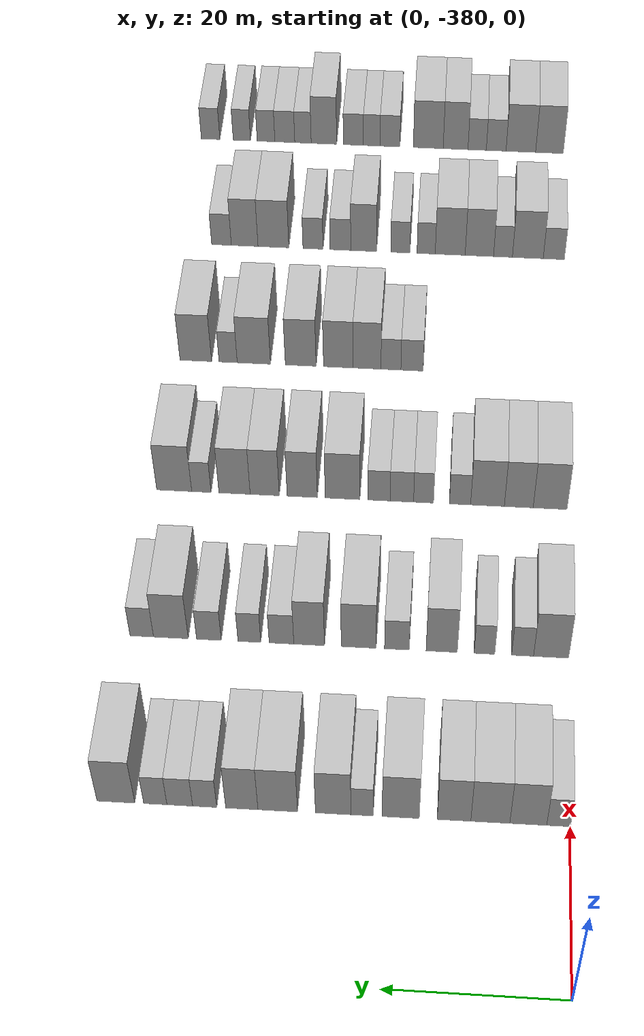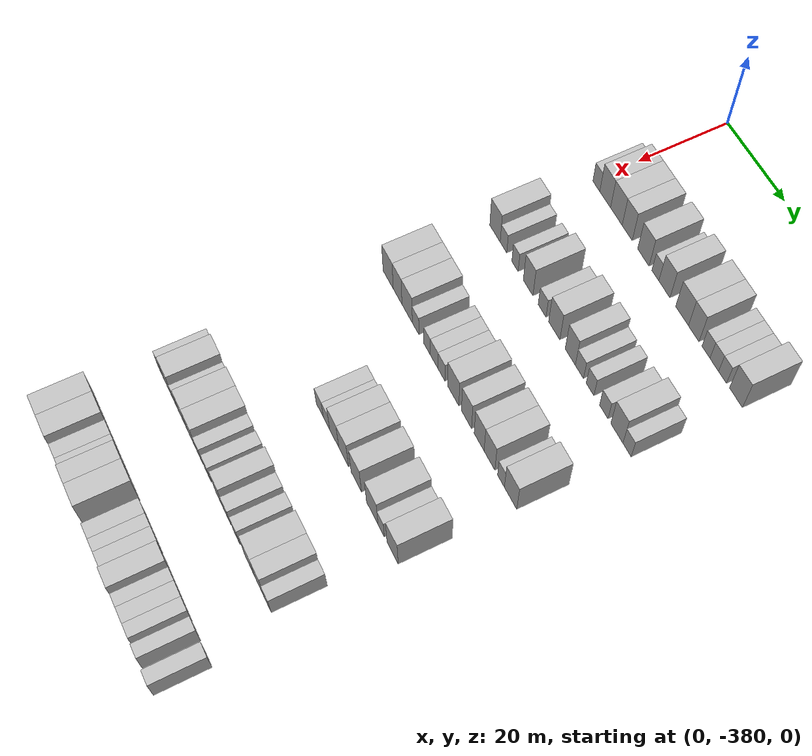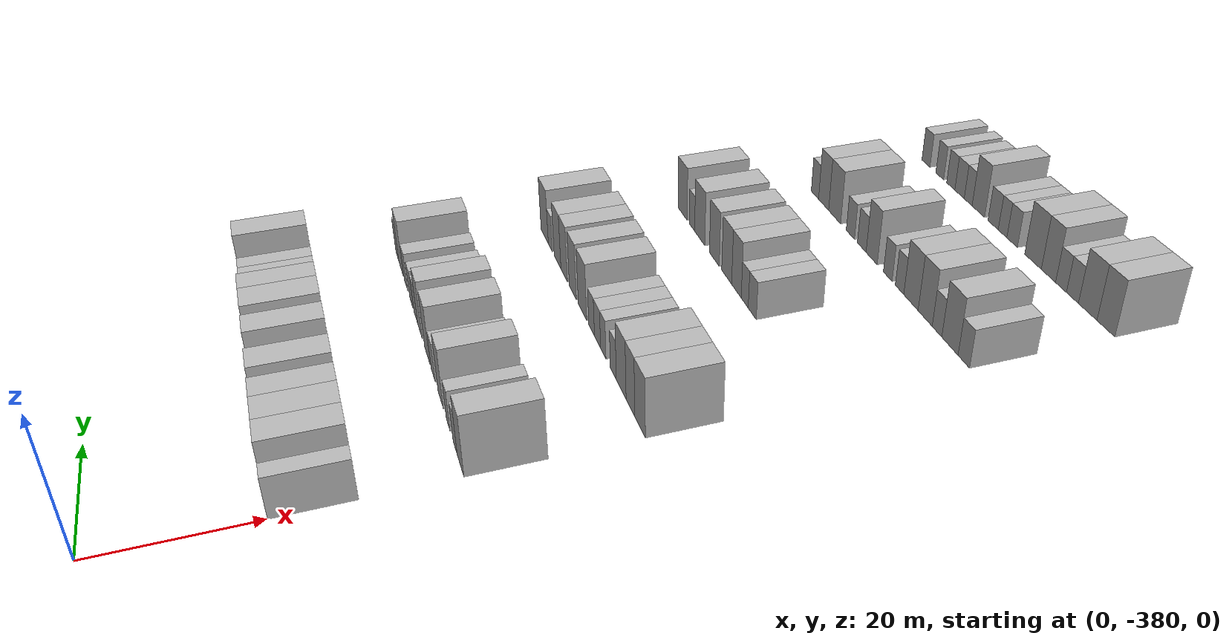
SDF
<sdf version="1.6">
 <world name="default">
  <model name="building_1">
   <static>1</static>
   <pose>25.0000 -378.6912 0 0.000000 0.000000 0.000000</pose>
   <link name="link">
    <pose>0 0 3.00 0 0 0</pose>
    <collision name="collision"><geometry><box><size>10.0000 2.6176 6.0000</size></box></geometry></collision>
    <visual name="visual">
     <cast_shadows>0</cast_shadows>
     <geometry><box><size>10.0000 2.6176 6.0000</size></box></geometry>
     <material>
      <script>
       <uri>model://HANNAS_wall/materials/scripts</uri>
       <uri>model://HANNAS_wall/materials/textures</uri>
       <name>vrc/HANNAS_wall</name>
      </script>
     </material>
    </visual>
   </link>
  </model>
  <model name="building_2">
   <static>1</static>
   <pose>25.0000 -375.3411 0 0.000000 0.000000 0.000000</pose>
   <link name="link">
    <pose>0 0 4.50 0 0 0</pose>
    <collision name="collision"><geometry><box><size>10.0000 4.0825 9.0000</size></box></geometry></collision>
    <visual name="visual">
     <cast_shadows>0</cast_shadows>
     <geometry><box><size>10.0000 4.0825 9.0000</size></box></geometry>
     <material>
      <script>
       <uri>model://HANNAS_wall/materials/scripts</uri>
       <uri>model://HANNAS_wall/materials/textures</uri>
       <name>vrc/HANNAS_wall</name>
      </script>
     </material>
    </visual>
   </link>
  </model>
  <model name="building_3">
   <static>1</static>
   <pose>25.0000 -371.1392 0 0.000000 0.000000 0.000000</pose>
   <link name="link">
    <pose>0 0 4.50 0 0 0</pose>
    <collision name="collision"><geometry><box><size>10.0000 4.3214 9.0000</size></box></geometry></collision>
    <visual name="visual">
     <cast_shadows>0</cast_shadows>
     <geometry><box><size>10.0000 4.3214 9.0000</size></box></geometry>
     <material>
      <script>
       <uri>model://HANNAS_wall/materials/scripts</uri>
       <uri>model://HANNAS_wall/materials/textures</uri>
       <name>vrc/HANNAS_wall</name>
      </script>
     </material>
    </visual>
   </link>
  </model>
  <model name="building_4">
   <static>1</static>
   <pose>25.0000 -367.1172 0 0.000000 0.000000 0.000000</pose>
   <link name="link">
    <pose>0 0 4.50 0 0 0</pose>
    <collision name="collision"><geometry><box><size>10.0000 3.7226 9.0000</size></box></geometry></collision>
    <visual name="visual">
     <cast_shadows>0</cast_shadows>
     <geometry><box><size>10.0000 3.7226 9.0000</size></box></geometry>
     <material>
      <script>
       <uri>model://HANNAS_wall/materials/scripts</uri>
       <uri>model://HANNAS_wall/materials/textures</uri>
       <name>vrc/HANNAS_wall</name>
      </script>
     </material>
    </visual>
   </link>
  </model>
  <model name="building_5">
   <static>1</static>
   <pose>25.0000 -361.1929 0 0.000000 0.000000 0.000000</pose>
   <link name="link">
    <pose>0 0 4.50 0 0 0</pose>
    <collision name="collision"><geometry><box><size>10.0000 4.1260 9.0000</size></box></geometry></collision>
    <visual name="visual">
     <cast_shadows>0</cast_shadows>
     <geometry><box><size>10.0000 4.1260 9.0000</size></box></geometry>
     <material>
      <script>
       <uri>model://HANNAS_wall/materials/scripts</uri>
       <uri>model://HANNAS_wall/materials/textures</uri>
       <name>vrc/HANNAS_wall</name>
      </script>
     </material>
    </visual>
   </link>
  </model>
  <model name="building_6">
   <static>1</static>
   <pose>25.0000 -356.8870 0 0.000000 0.000000 0.000000</pose>
   <link name="link">
    <pose>0 0 3.00 0 0 0</pose>
    <collision name="collision"><geometry><box><size>10.0000 2.4858 6.0000</size></box></geometry></collision>
    <visual name="visual">
     <cast_shadows>0</cast_shadows>
     <geometry><box><size>10.0000 2.4858 6.0000</size></box></geometry>
     <material>
      <script>
       <uri>model://HANNAS_wall/materials/scripts</uri>
       <uri>model://HANNAS_wall/materials/textures</uri>
       <name>vrc/HANNAS_wall</name>
      </script>
     </material>
    </visual>
   </link>
  </model>
  <model name="building_7">
   <static>1</static>
   <pose>25.0000 -353.6732 0 0.000000 0.000000 0.000000</pose>
   <link name="link">
    <pose>0 0 4.50 0 0 0</pose>
    <collision name="collision"><geometry><box><size>10.0000 3.9420 9.0000</size></box></geometry></collision>
    <visual name="visual">
     <cast_shadows>0</cast_shadows>
     <geometry><box><size>10.0000 3.9420 9.0000</size></box></geometry>
     <material>
      <script>
       <uri>model://HANNAS_wall/materials/scripts</uri>
       <uri>model://HANNAS_wall/materials/textures</uri>
       <name>vrc/HANNAS_wall</name>
      </script>
     </material>
    </visual>
   </link>
  </model>
  <model name="building_8">
   <static>1</static>
   <pose>25.0000 -347.4887 0 0.000000 0.000000 0.000000</pose>
   <link name="link">
    <pose>0 0 4.50 0 0 0</pose>
    <collision name="collision"><geometry><box><size>10.0000 4.4270 9.0000</size></box></geometry></collision>
    <visual name="visual">
     <cast_shadows>0</cast_shadows>
     <geometry><box><size>10.0000 4.4270 9.0000</size></box></geometry>
     <material>
      <script>
       <uri>model://HANNAS_wall/materials/scripts</uri>
       <uri>model://HANNAS_wall/materials/textures</uri>
       <name>vrc/HANNAS_wall</name>
      </script>
     </material>
    </visual>
   </link>
  </model>
  <model name="building_9">
   <static>1</static>
   <pose>25.0000 -343.4732 0 0.000000 0.000000 0.000000</pose>
   <link name="link">
    <pose>0 0 4.50 0 0 0</pose>
    <collision name="collision"><geometry><box><size>10.0000 3.6041 9.0000</size></box></geometry></collision>
    <visual name="visual">
     <cast_shadows>0</cast_shadows>
     <geometry><box><size>10.0000 3.6041 9.0000</size></box></geometry>
     <material>
      <script>
       <uri>model://HANNAS_wall/materials/scripts</uri>
       <uri>model://HANNAS_wall/materials/textures</uri>
       <name>vrc/HANNAS_wall</name>
      </script>
     </material>
    </visual>
   </link>
  </model>
  <model name="building_10">
   <static>1</static>
   <pose>25.0000 -339.3185 0 0.000000 0.000000 0.000000</pose>
   <link name="link">
    <pose>0 0 3.00 0 0 0</pose>
    <collision name="collision"><geometry><box><size>10.0000 2.7053 6.0000</size></box></geometry></collision>
    <visual name="visual">
     <cast_shadows>0</cast_shadows>
     <geometry><box><size>10.0000 2.7053 6.0000</size></box></geometry>
     <material>
      <script>
       <uri>model://HANNAS_wall/materials/scripts</uri>
       <uri>model://HANNAS_wall/materials/textures</uri>
       <name>vrc/HANNAS_wall</name>
      </script>
     </material>
    </visual>
   </link>
  </model>
  <model name="building_11">
   <static>1</static>
   <pose>25.0000 -336.5195 0 0.000000 0.000000 0.000000</pose>
   <link name="link">
    <pose>0 0 3.00 0 0 0</pose>
    <collision name="collision"><geometry><box><size>10.0000 2.8926 6.0000</size></box></geometry></collision>
    <visual name="visual">
     <cast_shadows>0</cast_shadows>
     <geometry><box><size>10.0000 2.8926 6.0000</size></box></geometry>
     <material>
      <script>
       <uri>model://HANNAS_wall/materials/scripts</uri>
       <uri>model://HANNAS_wall/materials/textures</uri>
       <name>vrc/HANNAS_wall</name>
      </script>
     </material>
    </visual>
   </link>
  </model>
  <model name="building_12">
   <static>1</static>
   <pose>25.0000 -333.7677 0 0.000000 0.000000 0.000000</pose>
   <link name="link">
    <pose>0 0 3.00 0 0 0</pose>
    <collision name="collision"><geometry><box><size>10.0000 2.6109 6.0000</size></box></geometry></collision>
    <visual name="visual">
     <cast_shadows>0</cast_shadows>
     <geometry><box><size>10.0000 2.6109 6.0000</size></box></geometry>
     <material>
      <script>
       <uri>model://HANNAS_wall/materials/scripts</uri>
       <uri>model://HANNAS_wall/materials/textures</uri>
       <name>vrc/HANNAS_wall</name>
      </script>
     </material>
    </visual>
   </link>
  </model>
  <model name="building_13">
   <static>1</static>
   <pose>25.0000 -329.3393 0 0.000000 0.000000 0.000000</pose>
   <link name="link">
    <pose>0 0 4.50 0 0 0</pose>
    <collision name="collision"><geometry><box><size>10.0000 4.2459 9.0000</size></box></geometry></collision>
    <visual name="visual">
     <cast_shadows>0</cast_shadows>
     <geometry><box><size>10.0000 4.2459 9.0000</size></box></geometry>
     <material>
      <script>
       <uri>model://HANNAS_wall/materials/scripts</uri>
       <uri>model://HANNAS_wall/materials/textures</uri>
       <name>vrc/HANNAS_wall</name>
      </script>
     </material>
    </visual>
   </link>
  </model>
  <model name="building_201">
   <static>1</static>
   <pose>47.0000 -377.9323 0 0.000000 0.000000 0.000000</pose>
   <link name="link">
    <pose>0 0 4.50 0 0 0</pose>
    <collision name="collision"><geometry><box><size>10.0000 4.1355 9.0000</size></box></geometry></collision>
    <visual name="visual">
     <cast_shadows>0</cast_shadows>
     <geometry><box><size>10.0000 4.1355 9.0000</size></box></geometry>
     <material>
      <script>
       <uri>model://HANNAS_wall/materials/scripts</uri>
       <uri>model://HANNAS_wall/materials/textures</uri>
       <name>vrc/HANNAS_wall</name>
      </script>
     </material>
    </visual>
   </link>
  </model>
  <model name="building_202">
   <static>1</static>
   <pose>47.0000 -374.5716 0 0.000000 0.000000 0.000000</pose>
   <link name="link">
    <pose>0 0 3.00 0 0 0</pose>
    <collision name="collision"><geometry><box><size>10.0000 2.5858 6.0000</size></box></geometry></collision>
    <visual name="visual">
     <cast_shadows>0</cast_shadows>
     <geometry><box><size>10.0000 2.5858 6.0000</size></box></geometry>
     <material>
      <script>
       <uri>model://HANNAS_wall/materials/scripts</uri>
       <uri>model://HANNAS_wall/materials/textures</uri>
       <name>vrc/HANNAS_wall</name>
      </script>
     </material>
    </visual>
   </link>
  </model>
  <model name="building_203">
   <static>1</static>
   <pose>47.0000 -370.0614 0 0.000000 0.000000 0.000000</pose>
   <link name="link">
    <pose>0 0 3.00 0 0 0</pose>
    <collision name="collision"><geometry><box><size>10.0000 2.4346 6.0000</size></box></geometry></collision>
    <visual name="visual">
     <cast_shadows>0</cast_shadows>
     <geometry><box><size>10.0000 2.4346 6.0000</size></box></geometry>
     <material>
      <script>
       <uri>model://HANNAS_wall/materials/scripts</uri>
       <uri>model://HANNAS_wall/materials/textures</uri>
       <name>vrc/HANNAS_wall</name>
      </script>
     </material>
    </visual>
   </link>
  </model>
  <model name="building_204">
   <static>1</static>
   <pose>47.0000 -364.9988 0 0.000000 0.000000 0.000000</pose>
   <link name="link">
    <pose>0 0 4.50 0 0 0</pose>
    <collision name="collision"><geometry><box><size>10.0000 3.6907 9.0000</size></box></geometry></collision>
    <visual name="visual">
     <cast_shadows>0</cast_shadows>
     <geometry><box><size>10.0000 3.6907 9.0000</size></box></geometry>
     <material>
      <script>
       <uri>model://HANNAS_wall/materials/scripts</uri>
       <uri>model://HANNAS_wall/materials/textures</uri>
       <name>vrc/HANNAS_wall</name>
      </script>
     </material>
    </visual>
   </link>
  </model>
  <model name="building_205">
   <static>1</static>
   <pose>47.0000 -359.6877 0 0.000000 0.000000 0.000000</pose>
   <link name="link">
    <pose>0 0 3.00 0 0 0</pose>
    <collision name="collision"><geometry><box><size>10.0000 2.9316 6.0000</size></box></geometry></collision>
    <visual name="visual">
     <cast_shadows>0</cast_shadows>
     <geometry><box><size>10.0000 2.9316 6.0000</size></box></geometry>
     <material>
      <script>
       <uri>model://HANNAS_wall/materials/scripts</uri>
       <uri>model://HANNAS_wall/materials/textures</uri>
       <name>vrc/HANNAS_wall</name>
      </script>
     </material>
    </visual>
   </link>
  </model>
  <model name="building_206">
   <static>1</static>
   <pose>47.0000 -355.1519 0 0.000000 0.000000 0.000000</pose>
   <link name="link">
    <pose>0 0 4.50 0 0 0</pose>
    <collision name="collision"><geometry><box><size>10.0000 4.1399 9.0000</size></box></geometry></collision>
    <visual name="visual">
     <cast_shadows>0</cast_shadows>
     <geometry><box><size>10.0000 4.1399 9.0000</size></box></geometry>
     <material>
      <script>
       <uri>model://HANNAS_wall/materials/scripts</uri>
       <uri>model://HANNAS_wall/materials/textures</uri>
       <name>vrc/HANNAS_wall</name>
      </script>
     </material>
    </visual>
   </link>
  </model>
  <model name="building_207">
   <static>1</static>
   <pose>47.0000 -349.2543 0 0.000000 0.000000 0.000000</pose>
   <link name="link">
    <pose>0 0 4.50 0 0 0</pose>
    <collision name="collision"><geometry><box><size>10.0000 3.6553 9.0000</size></box></geometry></collision>
    <visual name="visual">
     <cast_shadows>0</cast_shadows>
     <geometry><box><size>10.0000 3.6553 9.0000</size></box></geometry>
     <material>
      <script>
       <uri>model://HANNAS_wall/materials/scripts</uri>
       <uri>model://HANNAS_wall/materials/textures</uri>
       <name>vrc/HANNAS_wall</name>
      </script>
     </material>
    </visual>
   </link>
  </model>
  <model name="building_208">
   <static>1</static>
   <pose>47.0000 -345.9578 0 0.000000 0.000000 0.000000</pose>
   <link name="link">
    <pose>0 0 3.00 0 0 0</pose>
    <collision name="collision"><geometry><box><size>10.0000 2.9377 6.0000</size></box></geometry></collision>
    <visual name="visual">
     <cast_shadows>0</cast_shadows>
     <geometry><box><size>10.0000 2.9377 6.0000</size></box></geometry>
     <material>
      <script>
       <uri>model://HANNAS_wall/materials/scripts</uri>
       <uri>model://HANNAS_wall/materials/textures</uri>
       <name>vrc/HANNAS_wall</name>
      </script>
     </material>
    </visual>
   </link>
  </model>
  <model name="building_209">
   <static>1</static>
   <pose>47.0000 -342.1283 0 0.000000 0.000000 0.000000</pose>
   <link name="link">
    <pose>0 0 3.00 0 0 0</pose>
    <collision name="collision"><geometry><box><size>10.0000 2.7213 6.0000</size></box></geometry></collision>
    <visual name="visual">
     <cast_shadows>0</cast_shadows>
     <geometry><box><size>10.0000 2.7213 6.0000</size></box></geometry>
     <material>
      <script>
       <uri>model://HANNAS_wall/materials/scripts</uri>
       <uri>model://HANNAS_wall/materials/textures</uri>
       <name>vrc/HANNAS_wall</name>
      </script>
     </material>
    </visual>
   </link>
  </model>
  <model name="building_210">
   <static>1</static>
   <pose>47.0000 -337.2937 0 0.000000 0.000000 0.000000</pose>
   <link name="link">
    <pose>0 0 3.00 0 0 0</pose>
    <collision name="collision"><geometry><box><size>10.0000 2.9481 6.0000</size></box></geometry></collision>
    <visual name="visual">
     <cast_shadows>0</cast_shadows>
     <geometry><box><size>10.0000 2.9481 6.0000</size></box></geometry>
     <material>
      <script>
       <uri>model://HANNAS_wall/materials/scripts</uri>
       <uri>model://HANNAS_wall/materials/textures</uri>
       <name>vrc/HANNAS_wall</name>
      </script>
     </material>
    </visual>
   </link>
  </model>
  <model name="building_211">
   <static>1</static>
   <pose>47.0000 -332.7342 0 0.000000 0.000000 0.000000</pose>
   <link name="link">
    <pose>0 0 4.50 0 0 0</pose>
    <collision name="collision"><geometry><box><size>10.0000 4.1710 9.0000</size></box></geometry></collision>
    <visual name="visual">
     <cast_shadows>0</cast_shadows>
     <geometry><box><size>10.0000 4.1710 9.0000</size></box></geometry>
     <material>
      <script>
       <uri>model://HANNAS_wall/materials/scripts</uri>
       <uri>model://HANNAS_wall/materials/textures</uri>
       <name>vrc/HANNAS_wall</name>
      </script>
     </material>
    </visual>
   </link>
  </model>
  <model name="building_212">
   <static>1</static>
   <pose>47.0000 -329.2428 0 0.000000 0.000000 0.000000</pose>
   <link name="link">
    <pose>0 0 3.00 0 0 0</pose>
    <collision name="collision"><geometry><box><size>10.0000 2.8118 6.0000</size></box></geometry></collision>
    <visual name="visual">
     <cast_shadows>0</cast_shadows>
     <geometry><box><size>10.0000 2.8118 6.0000</size></box></geometry>
     <material>
      <script>
       <uri>model://HANNAS_wall/materials/scripts</uri>
       <uri>model://HANNAS_wall/materials/textures</uri>
       <name>vrc/HANNAS_wall</name>
      </script>
     </material>
    </visual>
   </link>
  </model>
  <model name="building_395">
   <static>1</static>
   <pose>69.0000 -377.8773 0 0.000000 0.000000 0.000000</pose>
   <link name="link">
    <pose>0 0 4.50 0 0 0</pose>
    <collision name="collision"><geometry><box><size>10.0000 4.2454 9.0000</size></box></geometry></collision>
    <visual name="visual">
     <cast_shadows>0</cast_shadows>
     <geometry><box><size>10.0000 4.2454 9.0000</size></box></geometry>
     <material>
      <script>
       <uri>model://HANNAS_wall/materials/scripts</uri>
       <uri>model://HANNAS_wall/materials/textures</uri>
       <name>vrc/HANNAS_wall</name>
      </script>
     </material>
    </visual>
   </link>
  </model>
  <model name="building_396">
   <static>1</static>
   <pose>69.0000 -373.9431 0 0.000000 0.000000 0.000000</pose>
   <link name="link">
    <pose>0 0 4.50 0 0 0</pose>
    <collision name="collision"><geometry><box><size>10.0000 3.6231 9.0000</size></box></geometry></collision>
    <visual name="visual">
     <cast_shadows>0</cast_shadows>
     <geometry><box><size>10.0000 3.6231 9.0000</size></box></geometry>
     <material>
      <script>
       <uri>model://HANNAS_wall/materials/scripts</uri>
       <uri>model://HANNAS_wall/materials/textures</uri>
       <name>vrc/HANNAS_wall</name>
      </script>
     </material>
    </visual>
   </link>
  </model>
  <model name="building_397">
   <static>1</static>
   <pose>69.0000 -370.0113 0 0.000000 0.000000 0.000000</pose>
   <link name="link">
    <pose>0 0 4.50 0 0 0</pose>
    <collision name="collision"><geometry><box><size>10.0000 4.2406 9.0000</size></box></geometry></collision>
    <visual name="visual">
     <cast_shadows>0</cast_shadows>
     <geometry><box><size>10.0000 4.2406 9.0000</size></box></geometry>
     <material>
      <script>
       <uri>model://HANNAS_wall/materials/scripts</uri>
       <uri>model://HANNAS_wall/materials/textures</uri>
       <name>vrc/HANNAS_wall</name>
      </script>
     </material>
    </visual>
   </link>
  </model>
  <model name="building_398">
   <static>1</static>
   <pose>69.0000 -366.5575 0 0.000000 0.000000 0.000000</pose>
   <link name="link">
    <pose>0 0 3.00 0 0 0</pose>
    <collision name="collision"><geometry><box><size>10.0000 2.6670 6.0000</size></box></geometry></collision>
    <visual name="visual">
     <cast_shadows>0</cast_shadows>
     <geometry><box><size>10.0000 2.6670 6.0000</size></box></geometry>
     <material>
      <script>
       <uri>model://HANNAS_wall/materials/scripts</uri>
       <uri>model://HANNAS_wall/materials/textures</uri>
       <name>vrc/HANNAS_wall</name>
      </script>
     </material>
    </visual>
   </link>
  </model>
  <model name="building_399">
   <static>1</static>
   <pose>69.0000 -361.9664 0 0.000000 0.000000 0.000000</pose>
   <link name="link">
    <pose>0 0 3.00 0 0 0</pose>
    <collision name="collision"><geometry><box><size>10.0000 2.5152 6.0000</size></box></geometry></collision>
    <visual name="visual">
     <cast_shadows>0</cast_shadows>
     <geometry><box><size>10.0000 2.5152 6.0000</size></box></geometry>
     <material>
      <script>
       <uri>model://HANNAS_wall/materials/scripts</uri>
       <uri>model://HANNAS_wall/materials/textures</uri>
       <name>vrc/HANNAS_wall</name>
      </script>
     </material>
    </visual>
   </link>
  </model>
  <model name="building_400">
   <static>1</static>
   <pose>69.0000 -359.2300 0 0.000000 0.000000 0.000000</pose>
   <link name="link">
    <pose>0 0 3.00 0 0 0</pose>
    <collision name="collision"><geometry><box><size>10.0000 2.9575 6.0000</size></box></geometry></collision>
    <visual name="visual">
     <cast_shadows>0</cast_shadows>
     <geometry><box><size>10.0000 2.9575 6.0000</size></box></geometry>
     <material>
      <script>
       <uri>model://HANNAS_wall/materials/scripts</uri>
       <uri>model://HANNAS_wall/materials/textures</uri>
       <name>vrc/HANNAS_wall</name>
      </script>
     </material>
    </visual>
   </link>
  </model>
  <model name="building_401">
   <static>1</static>
   <pose>69.0000 -356.3385 0 0.000000 0.000000 0.000000</pose>
   <link name="link">
    <pose>0 0 3.00 0 0 0</pose>
    <collision name="collision"><geometry><box><size>10.0000 2.8256 6.0000</size></box></geometry></collision>
    <visual name="visual">
     <cast_shadows>0</cast_shadows>
     <geometry><box><size>10.0000 2.8256 6.0000</size></box></geometry>
     <material>
      <script>
       <uri>model://HANNAS_wall/materials/scripts</uri>
       <uri>model://HANNAS_wall/materials/textures</uri>
       <name>vrc/HANNAS_wall</name>
      </script>
     </material>
    </visual>
   </link>
  </model>
  <model name="building_402">
   <static>1</static>
   <pose>69.0000 -351.7409 0 0.000000 0.000000 0.000000</pose>
   <link name="link">
    <pose>0 0 4.50 0 0 0</pose>
    <collision name="collision"><geometry><box><size>10.0000 4.3696 9.0000</size></box></geometry></collision>
    <visual name="visual">
     <cast_shadows>0</cast_shadows>
     <geometry><box><size>10.0000 4.3696 9.0000</size></box></geometry>
     <material>
      <script>
       <uri>model://HANNAS_wall/materials/scripts</uri>
       <uri>model://HANNAS_wall/materials/textures</uri>
       <name>vrc/HANNAS_wall</name>
      </script>
     </material>
    </visual>
   </link>
  </model>
  <model name="building_403">
   <static>1</static>
   <pose>69.0000 -346.6430 0 0.000000 0.000000 0.000000</pose>
   <link name="link">
    <pose>0 0 4.50 0 0 0</pose>
    <collision name="collision"><geometry><box><size>10.0000 3.8262 9.0000</size></box></geometry></collision>
    <visual name="visual">
     <cast_shadows>0</cast_shadows>
     <geometry><box><size>10.0000 3.8262 9.0000</size></box></geometry>
     <material>
      <script>
       <uri>model://HANNAS_wall/materials/scripts</uri>
       <uri>model://HANNAS_wall/materials/textures</uri>
       <name>vrc/HANNAS_wall</name>
      </script>
     </material>
    </visual>
   </link>
  </model>
  <model name="building_404">
   <static>1</static>
   <pose>69.0000 -341.8815 0 0.000000 0.000000 0.000000</pose>
   <link name="link">
    <pose>0 0 4.50 0 0 0</pose>
    <collision name="collision"><geometry><box><size>10.0000 3.6968 9.0000</size></box></geometry></collision>
    <visual name="visual">
     <cast_shadows>0</cast_shadows>
     <geometry><box><size>10.0000 3.6968 9.0000</size></box></geometry>
     <material>
      <script>
       <uri>model://HANNAS_wall/materials/scripts</uri>
       <uri>model://HANNAS_wall/materials/textures</uri>
       <name>vrc/HANNAS_wall</name>
      </script>
     </material>
    </visual>
   </link>
  </model>
  <model name="building_405">
   <static>1</static>
   <pose>69.0000 -338.0503 0 0.000000 0.000000 0.000000</pose>
   <link name="link">
    <pose>0 0 4.50 0 0 0</pose>
    <collision name="collision"><geometry><box><size>10.0000 3.9655 9.0000</size></box></geometry></collision>
    <visual name="visual">
     <cast_shadows>0</cast_shadows>
     <geometry><box><size>10.0000 3.9655 9.0000</size></box></geometry>
     <material>
      <script>
       <uri>model://HANNAS_wall/materials/scripts</uri>
       <uri>model://HANNAS_wall/materials/textures</uri>
       <name>vrc/HANNAS_wall</name>
      </script>
     </material>
    </visual>
   </link>
  </model>
  <model name="building_406">
   <static>1</static>
   <pose>69.0000 -333.8349 0 0.000000 0.000000 0.000000</pose>
   <link name="link">
    <pose>0 0 3.00 0 0 0</pose>
    <collision name="collision"><geometry><box><size>10.0000 2.4653 6.0000</size></box></geometry></collision>
    <visual name="visual">
     <cast_shadows>0</cast_shadows>
     <geometry><box><size>10.0000 2.4653 6.0000</size></box></geometry>
     <material>
      <script>
       <uri>model://HANNAS_wall/materials/scripts</uri>
       <uri>model://HANNAS_wall/materials/textures</uri>
       <name>vrc/HANNAS_wall</name>
      </script>
     </material>
    </visual>
   </link>
  </model>
  <model name="building_407">
   <static>1</static>
   <pose>69.0000 -330.3759 0 0.000000 0.000000 0.000000</pose>
   <link name="link">
    <pose>0 0 4.50 0 0 0</pose>
    <collision name="collision"><geometry><box><size>10.0000 4.4525 9.0000</size></box></geometry></collision>
    <visual name="visual">
     <cast_shadows>0</cast_shadows>
     <geometry><box><size>10.0000 4.4525 9.0000</size></box></geometry>
     <material>
      <script>
       <uri>model://HANNAS_wall/materials/scripts</uri>
       <uri>model://HANNAS_wall/materials/textures</uri>
       <name>vrc/HANNAS_wall</name>
      </script>
     </material>
    </visual>
   </link>
  </model>
  <model name="building_579">
   <static>1</static>
   <pose>91.0000 -359.5421 0 0.000000 0.000000 0.000000</pose>
   <link name="link">
    <pose>0 0 3.00 0 0 0</pose>
    <collision name="collision"><geometry><box><size>10.0000 2.9719 6.0000</size></box></geometry></collision>
    <visual name="visual">
     <cast_shadows>0</cast_shadows>
     <geometry><box><size>10.0000 2.9719 6.0000</size></box></geometry>
     <material>
      <script>
       <uri>model://HANNAS_wall/materials/scripts</uri>
       <uri>model://HANNAS_wall/materials/textures</uri>
       <name>vrc/HANNAS_wall</name>
      </script>
     </material>
    </visual>
   </link>
  </model>
  <model name="building_580">
   <static>1</static>
   <pose>91.0000 -356.7259 0 0.000000 0.000000 0.000000</pose>
   <link name="link">
    <pose>0 0 3.00 0 0 0</pose>
    <collision name="collision"><geometry><box><size>10.0000 2.6604 6.0000</size></box></geometry></collision>
    <visual name="visual">
     <cast_shadows>0</cast_shadows>
     <geometry><box><size>10.0000 2.6604 6.0000</size></box></geometry>
     <material>
      <script>
       <uri>model://HANNAS_wall/materials/scripts</uri>
       <uri>model://HANNAS_wall/materials/textures</uri>
       <name>vrc/HANNAS_wall</name>
      </script>
     </material>
    </visual>
   </link>
  </model>
  <model name="building_581">
   <static>1</static>
   <pose>91.0000 -353.5367 0 0.000000 0.000000 0.000000</pose>
   <link name="link">
    <pose>0 0 4.50 0 0 0</pose>
    <collision name="collision"><geometry><box><size>10.0000 3.7181 9.0000</size></box></geometry></collision>
    <visual name="visual">
     <cast_shadows>0</cast_shadows>
     <geometry><box><size>10.0000 3.7181 9.0000</size></box></geometry>
     <material>
      <script>
       <uri>model://HANNAS_wall/materials/scripts</uri>
       <uri>model://HANNAS_wall/materials/textures</uri>
       <name>vrc/HANNAS_wall</name>
      </script>
     </material>
    </visual>
   </link>
  </model>
  <model name="building_582">
   <static>1</static>
   <pose>91.0000 -349.6933 0 0.000000 0.000000 0.000000</pose>
   <link name="link">
    <pose>0 0 4.50 0 0 0</pose>
    <collision name="collision"><geometry><box><size>10.0000 3.9687 9.0000</size></box></geometry></collision>
    <visual name="visual">
     <cast_shadows>0</cast_shadows>
     <geometry><box><size>10.0000 3.9687 9.0000</size></box></geometry>
     <material>
      <script>
       <uri>model://HANNAS_wall/materials/scripts</uri>
       <uri>model://HANNAS_wall/materials/textures</uri>
       <name>vrc/HANNAS_wall</name>
      </script>
     </material>
    </visual>
   </link>
  </model>
  <model name="building_583">
   <static>1</static>
   <pose>91.0000 -344.6454 0 0.000000 0.000000 0.000000</pose>
   <link name="link">
    <pose>0 0 4.50 0 0 0</pose>
    <collision name="collision"><geometry><box><size>10.0000 4.1271 9.0000</size></box></geometry></collision>
    <visual name="visual">
     <cast_shadows>0</cast_shadows>
     <geometry><box><size>10.0000 4.1271 9.0000</size></box></geometry>
     <material>
      <script>
       <uri>model://HANNAS_wall/materials/scripts</uri>
       <uri>model://HANNAS_wall/materials/textures</uri>
       <name>vrc/HANNAS_wall</name>
      </script>
     </material>
    </visual>
   </link>
  </model>
  <model name="building_584">
   <static>1</static>
   <pose>91.0000 -338.3453 0 0.000000 0.000000 0.000000</pose>
   <link name="link">
    <pose>0 0 4.50 0 0 0</pose>
    <collision name="collision"><geometry><box><size>10.0000 4.4730 9.0000</size></box></geometry></collision>
    <visual name="visual">
     <cast_shadows>0</cast_shadows>
     <geometry><box><size>10.0000 4.4730 9.0000</size></box></geometry>
     <material>
      <script>
       <uri>model://HANNAS_wall/materials/scripts</uri>
       <uri>model://HANNAS_wall/materials/textures</uri>
       <name>vrc/HANNAS_wall</name>
      </script>
     </material>
    </visual>
   </link>
  </model>
  <model name="building_585">
   <static>1</static>
   <pose>91.0000 -334.8874 0 0.000000 0.000000 0.000000</pose>
   <link name="link">
    <pose>0 0 3.00 0 0 0</pose>
    <collision name="collision"><geometry><box><size>10.0000 2.4429 6.0000</size></box></geometry></collision>
    <visual name="visual">
     <cast_shadows>0</cast_shadows>
     <geometry><box><size>10.0000 2.4429 6.0000</size></box></geometry>
     <material>
      <script>
       <uri>model://HANNAS_wall/materials/scripts</uri>
       <uri>model://HANNAS_wall/materials/textures</uri>
       <name>vrc/HANNAS_wall</name>
      </script>
     </material>
    </visual>
   </link>
  </model>
  <model name="building_586">
   <static>1</static>
   <pose>91.0000 -330.5361 0 0.000000 0.000000 0.000000</pose>
   <link name="link">
    <pose>0 0 4.50 0 0 0</pose>
    <collision name="collision"><geometry><box><size>10.0000 4.2597 9.0000</size></box></geometry></collision>
    <visual name="visual">
     <cast_shadows>0</cast_shadows>
     <geometry><box><size>10.0000 4.2597 9.0000</size></box></geometry>
     <material>
      <script>
       <uri>model://HANNAS_wall/materials/scripts</uri>
       <uri>model://HANNAS_wall/materials/textures</uri>
       <name>vrc/HANNAS_wall</name>
      </script>
     </material>
    </visual>
   </link>
  </model>
  <model name="building_765">
   <static>1</static>
   <pose>113.0000 -378.5195 0 0.000000 0.000000 0.000000</pose>
   <link name="link">
    <pose>0 0 3.00 0 0 0</pose>
    <collision name="collision"><geometry><box><size>10.0000 2.9609 6.0000</size></box></geometry></collision>
    <visual name="visual">
     <cast_shadows>0</cast_shadows>
     <geometry><box><size>10.0000 2.9609 6.0000</size></box></geometry>
     <material>
      <script>
       <uri>model://HANNAS_wall/materials/scripts</uri>
       <uri>model://HANNAS_wall/materials/textures</uri>
       <name>vrc/HANNAS_wall</name>
      </script>
     </material>
    </visual>
   </link>
  </model>
  <model name="building_766">
   <static>1</static>
   <pose>113.0000 -374.8732 0 0.000000 0.000000 0.000000</pose>
   <link name="link">
    <pose>0 0 4.50 0 0 0</pose>
    <collision name="collision"><geometry><box><size>10.0000 4.3317 9.0000</size></box></geometry></collision>
    <visual name="visual">
     <cast_shadows>0</cast_shadows>
     <geometry><box><size>10.0000 4.3317 9.0000</size></box></geometry>
     <material>
      <script>
       <uri>model://HANNAS_wall/materials/scripts</uri>
       <uri>model://HANNAS_wall/materials/textures</uri>
       <name>vrc/HANNAS_wall</name>
      </script>
     </material>
    </visual>
   </link>
  </model>
  <model name="building_767">
   <static>1</static>
   <pose>113.0000 -371.3824 0 0.000000 0.000000 0.000000</pose>
   <link name="link">
    <pose>0 0 3.00 0 0 0</pose>
    <collision name="collision"><geometry><box><size>10.0000 2.6499 6.0000</size></box></geometry></collision>
    <visual name="visual">
     <cast_shadows>0</cast_shadows>
     <geometry><box><size>10.0000 2.6499 6.0000</size></box></geometry>
     <material>
      <script>
       <uri>model://HANNAS_wall/materials/scripts</uri>
       <uri>model://HANNAS_wall/materials/textures</uri>
       <name>vrc/HANNAS_wall</name>
      </script>
     </material>
    </visual>
   </link>
  </model>
  <model name="building_768">
   <static>1</static>
   <pose>113.0000 -368.0605 0 0.000000 0.000000 0.000000</pose>
   <link name="link">
    <pose>0 0 4.50 0 0 0</pose>
    <collision name="collision"><geometry><box><size>10.0000 3.9939 9.0000</size></box></geometry></collision>
    <visual name="visual">
     <cast_shadows>0</cast_shadows>
     <geometry><box><size>10.0000 3.9939 9.0000</size></box></geometry>
     <material>
      <script>
       <uri>model://HANNAS_wall/materials/scripts</uri>
       <uri>model://HANNAS_wall/materials/textures</uri>
       <name>vrc/HANNAS_wall</name>
      </script>
     </material>
    </visual>
   </link>
  </model>
  <model name="building_769">
   <static>1</static>
   <pose>113.0000 -363.9544 0 0.000000 0.000000 0.000000</pose>
   <link name="link">
    <pose>0 0 4.50 0 0 0</pose>
    <collision name="collision"><geometry><box><size>10.0000 4.2185 9.0000</size></box></geometry></collision>
    <visual name="visual">
     <cast_shadows>0</cast_shadows>
     <geometry><box><size>10.0000 4.2185 9.0000</size></box></geometry>
     <material>
      <script>
       <uri>model://HANNAS_wall/materials/scripts</uri>
       <uri>model://HANNAS_wall/materials/textures</uri>
       <name>vrc/HANNAS_wall</name>
      </script>
     </material>
    </visual>
   </link>
  </model>
  <model name="building_770">
   <static>1</static>
   <pose>113.0000 -360.5644 0 0.000000 0.000000 0.000000</pose>
   <link name="link">
    <pose>0 0 3.00 0 0 0</pose>
    <collision name="collision"><geometry><box><size>10.0000 2.5614 6.0000</size></box></geometry></collision>
    <visual name="visual">
     <cast_shadows>0</cast_shadows>
     <geometry><box><size>10.0000 2.5614 6.0000</size></box></geometry>
     <material>
      <script>
       <uri>model://HANNAS_wall/materials/scripts</uri>
       <uri>model://HANNAS_wall/materials/textures</uri>
       <name>vrc/HANNAS_wall</name>
      </script>
     </material>
    </visual>
   </link>
  </model>
  <model name="building_771">
   <static>1</static>
   <pose>113.0000 -356.9276 0 0.000000 0.000000 0.000000</pose>
   <link name="link">
    <pose>0 0 3.00 0 0 0</pose>
    <collision name="collision"><geometry><box><size>10.0000 2.7124 6.0000</size></box></geometry></collision>
    <visual name="visual">
     <cast_shadows>0</cast_shadows>
     <geometry><box><size>10.0000 2.7124 6.0000</size></box></geometry>
     <material>
      <script>
       <uri>model://HANNAS_wall/materials/scripts</uri>
       <uri>model://HANNAS_wall/materials/textures</uri>
       <name>vrc/HANNAS_wall</name>
      </script>
     </material>
    </visual>
   </link>
  </model>
  <model name="building_772">
   <static>1</static>
   <pose>113.0000 -351.7476 0 0.000000 0.000000 0.000000</pose>
   <link name="link">
    <pose>0 0 4.50 0 0 0</pose>
    <collision name="collision"><geometry><box><size>10.0000 3.6475 9.0000</size></box></geometry></collision>
    <visual name="visual">
     <cast_shadows>0</cast_shadows>
     <geometry><box><size>10.0000 3.6475 9.0000</size></box></geometry>
     <material>
      <script>
       <uri>model://HANNAS_wall/materials/scripts</uri>
       <uri>model://HANNAS_wall/materials/textures</uri>
       <name>vrc/HANNAS_wall</name>
      </script>
     </material>
    </visual>
   </link>
  </model>
  <model name="building_773">
   <static>1</static>
   <pose>113.0000 -348.4621 0 0.000000 0.000000 0.000000</pose>
   <link name="link">
    <pose>0 0 3.00 0 0 0</pose>
    <collision name="collision"><geometry><box><size>10.0000 2.9236 6.0000</size></box></geometry></collision>
    <visual name="visual">
     <cast_shadows>0</cast_shadows>
     <geometry><box><size>10.0000 2.9236 6.0000</size></box></geometry>
     <material>
      <script>
       <uri>model://HANNAS_wall/materials/scripts</uri>
       <uri>model://HANNAS_wall/materials/textures</uri>
       <name>vrc/HANNAS_wall</name>
      </script>
     </material>
    </visual>
   </link>
  </model>
  <model name="building_774">
   <static>1</static>
   <pose>113.0000 -344.5789 0 0.000000 0.000000 0.000000</pose>
   <link name="link">
    <pose>0 0 3.00 0 0 0</pose>
    <collision name="collision"><geometry><box><size>10.0000 2.8428 6.0000</size></box></geometry></collision>
    <visual name="visual">
     <cast_shadows>0</cast_shadows>
     <geometry><box><size>10.0000 2.8428 6.0000</size></box></geometry>
     <material>
      <script>
       <uri>model://HANNAS_wall/materials/scripts</uri>
       <uri>model://HANNAS_wall/materials/textures</uri>
       <name>vrc/HANNAS_wall</name>
      </script>
     </material>
    </visual>
   </link>
  </model>
  <model name="building_775">
   <static>1</static>
   <pose>113.0000 -338.9667 0 0.000000 0.000000 0.000000</pose>
   <link name="link">
    <pose>0 0 4.50 0 0 0</pose>
    <collision name="collision"><geometry><box><size>10.0000 4.3816 9.0000</size></box></geometry></collision>
    <visual name="visual">
     <cast_shadows>0</cast_shadows>
     <geometry><box><size>10.0000 4.3816 9.0000</size></box></geometry>
     <material>
      <script>
       <uri>model://HANNAS_wall/materials/scripts</uri>
       <uri>model://HANNAS_wall/materials/textures</uri>
       <name>vrc/HANNAS_wall</name>
      </script>
     </material>
    </visual>
   </link>
  </model>
  <model name="building_776">
   <static>1</static>
   <pose>113.0000 -334.8824 0 0.000000 0.000000 0.000000</pose>
   <link name="link">
    <pose>0 0 4.50 0 0 0</pose>
    <collision name="collision"><geometry><box><size>10.0000 3.7871 9.0000</size></box></geometry></collision>
    <visual name="visual">
     <cast_shadows>0</cast_shadows>
     <geometry><box><size>10.0000 3.7871 9.0000</size></box></geometry>
     <material>
      <script>
       <uri>model://HANNAS_wall/materials/scripts</uri>
       <uri>model://HANNAS_wall/materials/textures</uri>
       <name>vrc/HANNAS_wall</name>
      </script>
     </material>
    </visual>
   </link>
  </model>
  <model name="building_777">
   <static>1</static>
   <pose>113.0000 -331.5951 0 0.000000 0.000000 0.000000</pose>
   <link name="link">
    <pose>0 0 3.00 0 0 0</pose>
    <collision name="collision"><geometry><box><size>10.0000 2.7875 6.0000</size></box></geometry></collision>
    <visual name="visual">
     <cast_shadows>0</cast_shadows>
     <geometry><box><size>10.0000 2.7875 6.0000</size></box></geometry>
     <material>
      <script>
       <uri>model://HANNAS_wall/materials/scripts</uri>
       <uri>model://HANNAS_wall/materials/textures</uri>
       <name>vrc/HANNAS_wall</name>
      </script>
     </material>
    </visual>
   </link>
  </model>
  <model name="building_938">
   <static>1</static>
   <pose>135.0000 -377.9589 0 0.000000 0.000000 0.000000</pose>
   <link name="link">
    <pose>0 0 4.50 0 0 0</pose>
    <collision name="collision"><geometry><box><size>10.0000 4.0821 9.0000</size></box></geometry></collision>
    <visual name="visual">
     <cast_shadows>0</cast_shadows>
     <geometry><box><size>10.0000 4.0821 9.0000</size></box></geometry>
     <material>
      <script>
       <uri>model://HANNAS_wall/materials/scripts</uri>
       <uri>model://HANNAS_wall/materials/textures</uri>
       <name>vrc/HANNAS_wall</name>
      </script>
     </material>
    </visual>
   </link>
  </model>
  <model name="building_939">
   <static>1</static>
   <pose>135.0000 -373.7299 0 0.000000 0.000000 0.000000</pose>
   <link name="link">
    <pose>0 0 4.50 0 0 0</pose>
    <collision name="collision"><geometry><box><size>10.0000 4.3759 9.0000</size></box></geometry></collision>
    <visual name="visual">
     <cast_shadows>0</cast_shadows>
     <geometry><box><size>10.0000 4.3759 9.0000</size></box></geometry>
     <material>
      <script>
       <uri>model://HANNAS_wall/materials/scripts</uri>
       <uri>model://HANNAS_wall/materials/textures</uri>
       <name>vrc/HANNAS_wall</name>
      </script>
     </material>
    </visual>
   </link>
  </model>
  <model name="building_940">
   <static>1</static>
   <pose>135.0000 -370.0826 0 0.000000 0.000000 0.000000</pose>
   <link name="link">
    <pose>0 0 3.00 0 0 0</pose>
    <collision name="collision"><geometry><box><size>10.0000 2.9188 6.0000</size></box></geometry></collision>
    <visual name="visual">
     <cast_shadows>0</cast_shadows>
     <geometry><box><size>10.0000 2.9188 6.0000</size></box></geometry>
     <material>
      <script>
       <uri>model://HANNAS_wall/materials/scripts</uri>
       <uri>model://HANNAS_wall/materials/textures</uri>
       <name>vrc/HANNAS_wall</name>
      </script>
     </material>
    </visual>
   </link>
  </model>
  <model name="building_941">
   <static>1</static>
   <pose>135.0000 -367.2650 0 0.000000 0.000000 0.000000</pose>
   <link name="link">
    <pose>0 0 3.00 0 0 0</pose>
    <collision name="collision"><geometry><box><size>10.0000 2.7165 6.0000</size></box></geometry></collision>
    <visual name="visual">
     <cast_shadows>0</cast_shadows>
     <geometry><box><size>10.0000 2.7165 6.0000</size></box></geometry>
     <material>
      <script>
       <uri>model://HANNAS_wall/materials/scripts</uri>
       <uri>model://HANNAS_wall/materials/textures</uri>
       <name>vrc/HANNAS_wall</name>
      </script>
     </material>
    </visual>
   </link>
  </model>
  <model name="building_942">
   <static>1</static>
   <pose>135.0000 -364.0671 0 0.000000 0.000000 0.000000</pose>
   <link name="link">
    <pose>0 0 4.50 0 0 0</pose>
    <collision name="collision"><geometry><box><size>10.0000 3.6793 9.0000</size></box></geometry></collision>
    <visual name="visual">
     <cast_shadows>0</cast_shadows>
     <geometry><box><size>10.0000 3.6793 9.0000</size></box></geometry>
     <material>
      <script>
       <uri>model://HANNAS_wall/materials/scripts</uri>
       <uri>model://HANNAS_wall/materials/textures</uri>
       <name>vrc/HANNAS_wall</name>
      </script>
     </material>
    </visual>
   </link>
  </model>
  <model name="building_943">
   <static>1</static>
   <pose>135.0000 -360.0176 0 0.000000 0.000000 0.000000</pose>
   <link name="link">
    <pose>0 0 4.50 0 0 0</pose>
    <collision name="collision"><geometry><box><size>10.0000 4.4197 9.0000</size></box></geometry></collision>
    <visual name="visual">
     <cast_shadows>0</cast_shadows>
     <geometry><box><size>10.0000 4.4197 9.0000</size></box></geometry>
     <material>
      <script>
       <uri>model://HANNAS_wall/materials/scripts</uri>
       <uri>model://HANNAS_wall/materials/textures</uri>
       <name>vrc/HANNAS_wall</name>
      </script>
     </material>
    </visual>
   </link>
  </model>
  <model name="building_944">
   <static>1</static>
   <pose>135.0000 -354.3318 0 0.000000 0.000000 0.000000</pose>
   <link name="link">
    <pose>0 0 3.00 0 0 0</pose>
    <collision name="collision"><geometry><box><size>10.0000 2.9518 6.0000</size></box></geometry></collision>
    <visual name="visual">
     <cast_shadows>0</cast_shadows>
     <geometry><box><size>10.0000 2.9518 6.0000</size></box></geometry>
     <material>
      <script>
       <uri>model://HANNAS_wall/materials/scripts</uri>
       <uri>model://HANNAS_wall/materials/textures</uri>
       <name>vrc/HANNAS_wall</name>
      </script>
     </material>
    </visual>
   </link>
  </model>
  <model name="building_945">
   <static>1</static>
   <pose>135.0000 -351.6214 0 0.000000 0.000000 0.000000</pose>
   <link name="link">
    <pose>0 0 3.00 0 0 0</pose>
    <collision name="collision"><geometry><box><size>10.0000 2.4690 6.0000</size></box></geometry></collision>
    <visual name="visual">
     <cast_shadows>0</cast_shadows>
     <geometry><box><size>10.0000 2.4690 6.0000</size></box></geometry>
     <material>
      <script>
       <uri>model://HANNAS_wall/materials/scripts</uri>
       <uri>model://HANNAS_wall/materials/textures</uri>
       <name>vrc/HANNAS_wall</name>
      </script>
     </material>
    </visual>
   </link>
  </model>
  <model name="building_946">
   <static>1</static>
   <pose>135.0000 -348.8900 0 0.000000 0.000000 0.000000</pose>
   <link name="link">
    <pose>0 0 3.00 0 0 0</pose>
    <collision name="collision"><geometry><box><size>10.0000 2.9938 6.0000</size></box></geometry></collision>
    <visual name="visual">
     <cast_shadows>0</cast_shadows>
     <geometry><box><size>10.0000 2.9938 6.0000</size></box></geometry>
     <material>
      <script>
       <uri>model://HANNAS_wall/materials/scripts</uri>
       <uri>model://HANNAS_wall/materials/textures</uri>
       <name>vrc/HANNAS_wall</name>
      </script>
     </material>
    </visual>
   </link>
  </model>
  <model name="building_947">
   <static>1</static>
   <pose>135.0000 -344.4950 0 0.000000 0.000000 0.000000</pose>
   <link name="link">
    <pose>0 0 4.50 0 0 0</pose>
    <collision name="collision"><geometry><box><size>10.0000 3.7961 9.0000</size></box></geometry></collision>
    <visual name="visual">
     <cast_shadows>0</cast_shadows>
     <geometry><box><size>10.0000 3.7961 9.0000</size></box></geometry>
     <material>
      <script>
       <uri>model://HANNAS_wall/materials/scripts</uri>
       <uri>model://HANNAS_wall/materials/textures</uri>
       <name>vrc/HANNAS_wall</name>
      </script>
     </material>
    </visual>
   </link>
  </model>
  <model name="building_948">
   <static>1</static>
   <pose>135.0000 -341.3717 0 0.000000 0.000000 0.000000</pose>
   <link name="link">
    <pose>0 0 3.00 0 0 0</pose>
    <collision name="collision"><geometry><box><size>10.0000 2.4506 6.0000</size></box></geometry></collision>
    <visual name="visual">
     <cast_shadows>0</cast_shadows>
     <geometry><box><size>10.0000 2.4506 6.0000</size></box></geometry>
     <material>
      <script>
       <uri>model://HANNAS_wall/materials/scripts</uri>
       <uri>model://HANNAS_wall/materials/textures</uri>
       <name>vrc/HANNAS_wall</name>
      </script>
     </material>
    </visual>
   </link>
  </model>
  <model name="building_949">
   <static>1</static>
   <pose>135.0000 -338.6599 0 0.000000 0.000000 0.000000</pose>
   <link name="link">
    <pose>0 0 3.00 0 0 0</pose>
    <collision name="collision"><geometry><box><size>10.0000 2.9730 6.0000</size></box></geometry></collision>
    <visual name="visual">
     <cast_shadows>0</cast_shadows>
     <geometry><box><size>10.0000 2.9730 6.0000</size></box></geometry>
     <material>
      <script>
       <uri>model://HANNAS_wall/materials/scripts</uri>
       <uri>model://HANNAS_wall/materials/textures</uri>
       <name>vrc/HANNAS_wall</name>
      </script>
     </material>
    </visual>
   </link>
  </model>
  <model name="building_950">
   <static>1</static>
   <pose>135.0000 -335.8523 0 0.000000 0.000000 0.000000</pose>
   <link name="link">
    <pose>0 0 3.00 0 0 0</pose>
    <collision name="collision"><geometry><box><size>10.0000 2.6421 6.0000</size></box></geometry></collision>
    <visual name="visual">
     <cast_shadows>0</cast_shadows>
     <geometry><box><size>10.0000 2.6421 6.0000</size></box></geometry>
     <material>
      <script>
       <uri>model://HANNAS_wall/materials/scripts</uri>
       <uri>model://HANNAS_wall/materials/textures</uri>
       <name>vrc/HANNAS_wall</name>
      </script>
     </material>
    </visual>
   </link>
  </model>
  <model name="building_951">
   <static>1</static>
   <pose>135.0000 -332.2395 0 0.000000 0.000000 0.000000</pose>
   <link name="link">
    <pose>0 0 3.00 0 0 0</pose>
    <collision name="collision"><geometry><box><size>10.0000 2.5835 6.0000</size></box></geometry></collision>
    <visual name="visual">
     <cast_shadows>0</cast_shadows>
     <geometry><box><size>10.0000 2.5835 6.0000</size></box></geometry>
     <material>
      <script>
       <uri>model://HANNAS_wall/materials/scripts</uri>
       <uri>model://HANNAS_wall/materials/textures</uri>
       <name>vrc/HANNAS_wall</name>
      </script>
     </material>
    </visual>
   </link>
  </model>
  <model name="building_952">
   <static>1</static>
   <pose>135.0000 -327.5627 0 0.000000 0.000000 0.000000</pose>
   <link name="link">
    <pose>0 0 3.00 0 0 0</pose>
    <collision name="collision"><geometry><box><size>10.0000 2.7701 6.0000</size></box></geometry></collision>
    <visual name="visual">
     <cast_shadows>0</cast_shadows>
     <geometry><box><size>10.0000 2.7701 6.0000</size></box></geometry>
     <material>
      <script>
       <uri>model://HANNAS_wall/materials/scripts</uri>
       <uri>model://HANNAS_wall/materials/textures</uri>
       <name>vrc/HANNAS_wall</name>
      </script>
     </material>
    </visual>
   </link>
  </model>
 </world>
</sdf>
